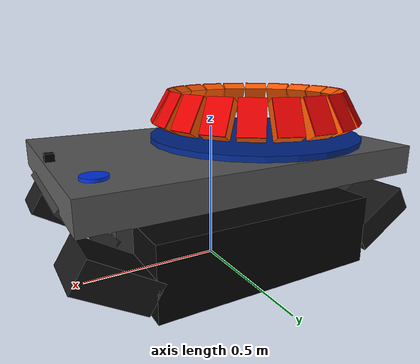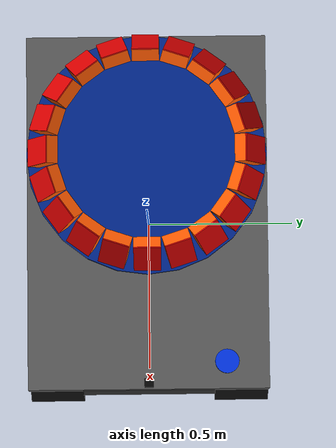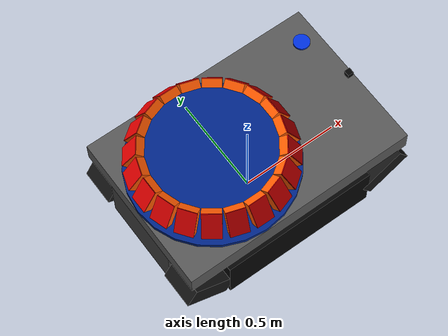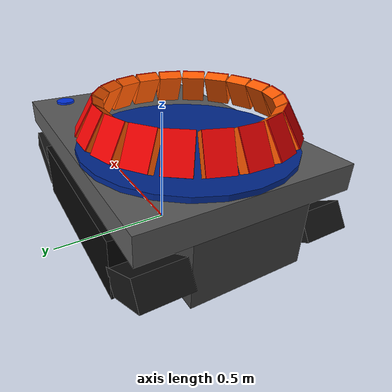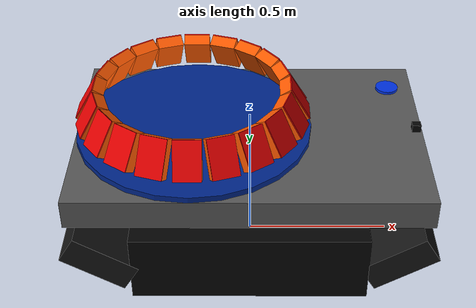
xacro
<?xml version="1.0"?>
<robot name="tracked_rover" xmlns:xacro="http://www.ros.org/wiki/xacro">

  <!-- Paramètres radar          -->

  <!-- Centre de la plateforme circulaire dans base_link -->
  <xacro:property name="platform_center_x" value="-0.19"/>
  <xacro:property name="platform_center_y" value="0.0"/>

  <!-- Plateforme : centre z = 0.45, épaisseur 0.02, donc dessus à z = 0.46 -->
  <xacro:property name="platform_top_z" value="0.46"/>

  <!-- Cercle des radars : diamètre 68 cm -->
  <xacro:property name="radar_ring_radius" value="0.34"/>

  <!-- Centre radar : 10 cm au-dessus du dessus de la plateforme -->
  <xacro:property name="radar_center_z" value="0.56"/>

  <!-- Dimensions radar : profondeur x, largeur y, hauteur z -->
  <xacro:property name="radar_depth" value="0.04"/>
  <xacro:property name="radar_width" value="0.09"/>
  <xacro:property name="radar_height" value="0.13"/>

  <!-- Inclinaison des radars : 30 degrés vers l'arrière / vers le haut -->
  <xacro:property name="radar_pitch" value="-0.523599"/>

  <!-- Macro module radar        -->

  <xacro:macro name="radar_module" params="name angle">

    <link name="${name}">

      <!-- Corps du radar -->
      <!-- x = profondeur 4 cm, y = largeur 9 cm, z = hauteur 13 cm -->
      <visual>
        <origin xyz="0 0 0" rpy="0 0 0"/>
        <geometry>
          <box size="${radar_depth} ${radar_width} ${radar_height}"/>
        </geometry>
        <material name="radar_orange">
          <color rgba="1.0 0.35 0.0 1.0"/>
        </material>
      </visual>

      <collision>
        <origin xyz="0 0 0" rpy="0 0 0"/>
        <geometry>
          <box size="${radar_depth} ${radar_width} ${radar_height}"/>
        </geometry>
      </collision>

      <!-- Face rouge côté +X pour visualiser le sens de détection -->
      <visual>
        <origin xyz="0.022 0 0" rpy="0 0 0"/>
        <geometry>
          <box size="0.004 ${radar_width} ${radar_height}"/>
        </geometry>
        <material name="radar_front_red">
          <color rgba="0.9 0.0 0.0 1.0"/>
        </material>
      </visual>

    </link>

    <joint name="base_to_${name}" type="fixed">
      <parent link="base_link"/>
      <child link="${name}"/>
      <origin
        xyz="${platform_center_x + radar_ring_radius * cos(angle)} ${platform_center_y + radar_ring_radius * sin(angle)} ${radar_center_z}"
        rpy="0 ${radar_pitch} ${angle}"/>
    </joint>

  </xacro:macro>

  <!-- Repère principal du rover -->
  <link name="base_link">

    <!-- Corps supérieur du rover : 1.18 m x 0.80 m x 0.10 m -->
    <!-- Le toit reste à z = 0.44 -->
    <visual>
      <origin xyz="0 0 0.39" rpy="0 0 0"/>
      <geometry>
        <box size="1.18 0.80 0.10"/>
      </geometry>
      <material name="rover_body_gray">
        <color rgba="0.35 0.35 0.35 1.0"/>
      </material>
    </visual>

    <collision>
      <origin xyz="0 0 0.39" rpy="0 0 0"/>
      <geometry>
        <box size="1.18 0.80 0.10"/>
      </geometry>
    </collision>

    <!-- Chenille gauche : partie centrale -->
    <visual>
      <origin xyz="0 0.31 0.16" rpy="0 0 0"/>
      <geometry>
        <box size="0.78 0.18 0.24"/>
      </geometry>
      <material name="track_black">
        <color rgba="0.02 0.02 0.02 1.0"/>
      </material>
    </visual>

    <collision>
      <origin xyz="0 0.31 0.16" rpy="0 0 0"/>
      <geometry>
        <box size="0.78 0.18 0.24"/>
      </geometry>
    </collision>

    <!-- Chenille gauche : chanfrein avant -->
    <visual>
      <origin xyz="0.49 0.31 0.18" rpy="0 -0.55 0"/>
      <geometry>
        <box size="0.24 0.18 0.10"/>
      </geometry>
      <material name="track_chamfer_dark">
        <color rgba="0.08 0.08 0.08 1.0"/>
      </material>
    </visual>

    <collision>
      <origin xyz="0.49 0.31 0.18" rpy="0 -0.55 0"/>
      <geometry>
        <box size="0.24 0.18 0.10"/>
      </geometry>
    </collision>

    <!-- Chenille gauche : chanfrein arrière -->
    <visual>
      <origin xyz="-0.49 0.31 0.18" rpy="0 0.55 0"/>
      <geometry>
        <box size="0.24 0.18 0.10"/>
      </geometry>
      <material name="track_chamfer_dark">
        <color rgba="0.08 0.08 0.08 1.0"/>
      </material>
    </visual>

    <collision>
      <origin xyz="-0.49 0.31 0.18" rpy="0 0.55 0"/>
      <geometry>
        <box size="0.24 0.18 0.10"/>
      </geometry>
    </collision>

    <!-- Chenille droite : partie centrale -->
    <visual>
      <origin xyz="0 -0.31 0.16" rpy="0 0 0"/>
      <geometry>
        <box size="0.78 0.18 0.24"/>
      </geometry>
      <material name="track_black">
        <color rgba="0.02 0.02 0.02 1.0"/>
      </material>
    </visual>

    <collision>
      <origin xyz="0 -0.31 0.16" rpy="0 0 0"/>
      <geometry>
        <box size="0.78 0.18 0.24"/>
      </geometry>
    </collision>

    <!-- Chenille droite : chanfrein avant -->
    <visual>
      <origin xyz="0.49 -0.31 0.18" rpy="0 -0.55 0"/>
      <geometry>
        <box size="0.24 0.18 0.10"/>
      </geometry>
      <material name="track_chamfer_dark">
        <color rgba="0.08 0.08 0.08 1.0"/>
      </material>
    </visual>

    <collision>
      <origin xyz="0.49 -0.31 0.18" rpy="0 -0.55 0"/>
      <geometry>
        <box size="0.24 0.18 0.10"/>
      </geometry>
    </collision>

    <!-- Chenille droite : chanfrein arrière -->
    <visual>
      <origin xyz="-0.49 -0.31 0.18" rpy="0 0.55 0"/>
      <geometry>
        <box size="0.24 0.18 0.10"/>
      </geometry>
      <material name="track_chamfer_dark">
        <color rgba="0.08 0.08 0.08 1.0"/>
      </material>
    </visual>

    <collision>
      <origin xyz="-0.49 -0.31 0.18" rpy="0 0.55 0"/>
      <geometry>
        <box size="0.24 0.18 0.10"/>
      </geometry>
    </collision>

    <!-- Partie centrale basse entre les chenilles -->
    <visual>
      <origin xyz="-0.075 0 0.22" rpy="0 0 0"/>
      <geometry>
        <box size="1.03 0.44 0.24"/>
      </geometry>
      <material name="center_body_gray">
        <color rgba="0.25 0.25 0.25 1.0"/>
      </material>
    </visual>

    <collision>
      <origin xyz="-0.075 0 0.22" rpy="0 0 0"/>
      <geometry>
        <box size="1.03 0.44 0.24"/>
      </geometry>
    </collision>

    <!-- Approximation du chanfrein avant central du corps -->
    <visual>
      <origin xyz="0.515 0 0.285" rpy="0 -0.785398 0"/>
      <geometry>
        <box size="0.21 0.44 0.04"/>
      </geometry>
      <material name="front_chamfer_gray">
        <color rgba="0.22 0.22 0.22 1.0"/>
      </material>
    </visual>

    <collision>
      <origin xyz="0.515 0 0.285" rpy="0 -0.785398 0"/>
      <geometry>
        <box size="0.21 0.44 0.04"/>
      </geometry>
    </collision>

    <!-- Plateforme circulaire arrière : diamètre 80 cm, épaisseur 2 cm -->
    <!-- Bord arrière aligné avec l'arrière du rover -->
    <visual>
      <origin xyz="-0.19 0 0.45" rpy="0 0 0"/>
      <geometry>
        <cylinder radius="0.40" length="0.02"/>
      </geometry>
      <material name="rear_platform_blue">
        <color rgba="0.0 0.15 0.55 1.0"/>
      </material>
    </visual>

    <collision>
      <origin xyz="-0.19 0 0.45" rpy="0 0 0"/>
      <geometry>
        <cylinder radius="0.40" length="0.02"/>
      </geometry>
    </collision>

  </link>

  <!-- 20 modules radar ARS5     -->

  <!-- Avant du rover -->
  <xacro:radar_module name="radar_117_link" angle="0.000000"/>

  <!-- Côté gauche du rover : IDs décroissants -->
  <xacro:radar_module name="radar_116_link" angle="0.314159"/>
  <xacro:radar_module name="radar_115_link" angle="0.628319"/>
  <xacro:radar_module name="radar_114_link" angle="0.942478"/>
  <xacro:radar_module name="radar_113_link" angle="1.256637"/>
  <xacro:radar_module name="radar_112_link" angle="1.570796"/>
  <xacro:radar_module name="radar_111_link" angle="1.884956"/>
  <xacro:radar_module name="radar_110_link" angle="2.199115"/>

  <!-- Arrière gauche / arrière -->
  <xacro:radar_module name="radar_129_link" angle="2.513274"/>
  <xacro:radar_module name="radar_128_link" angle="2.827433"/>
  <xacro:radar_module name="radar_127_link" angle="3.141593"/>

  <!-- Arrière droit / côté droit : IDs décroissants jusqu'à 118 -->
  <xacro:radar_module name="radar_126_link" angle="3.455752"/>
  <xacro:radar_module name="radar_125_link" angle="3.769911"/>
  <xacro:radar_module name="radar_124_link" angle="4.084070"/>
  <xacro:radar_module name="radar_123_link" angle="4.398230"/>
  <xacro:radar_module name="radar_122_link" angle="4.712389"/>
  <xacro:radar_module name="radar_121_link" angle="5.026548"/>
  <xacro:radar_module name="radar_120_link" angle="5.340708"/>
  <xacro:radar_module name="radar_119_link" angle="5.654867"/>
  <xacro:radar_module name="radar_118_link" angle="5.969026"/>

  <!-- Lidar AS-DT1 -->
  <link name="as_dt1_link">

    <!-- Volume visible du lidar : cube 3 cm x 3 cm x 3 cm -->
    <visual>
      <origin xyz="0 0 0" rpy="0 0 0"/>
      <geometry>
        <box size="0.03 0.03 0.03"/>
      </geometry>
      <material name="lidar_black">
        <color rgba="0.02 0.02 0.02 1.0"/>
      </material>
    </visual>

    <collision>
      <origin xyz="0 0 0" rpy="0 0 0"/>
      <geometry>
        <box size="0.03 0.03 0.03"/>
      </geometry>
    </collision>

  </link>

  <joint name="base_to_as_dt1" type="fixed">
    <parent link="base_link"/>
    <child link="as_dt1_link"/>
    <origin xyz="0.57 0.00 0.45" rpy="0 1.57079632679 0"/>
  </joint>

  <!-- IMU -->
  <link name="imu_link"/>

  <joint name="base_to_imu" type="fixed">
    <parent link="base_link"/>
    <child link="imu_link"/>
    <!-- x avant, y gauche, z haut -->
    <origin xyz="0.16 0.06 0.33" rpy="0 0 0"/>
  </joint>

  <!-- GPS -->
  <link name="gps_link">

    <!-- Volume visible du GPS : disque diamètre 8 cm, hauteur 2 cm -->
    <visual>
      <origin xyz="0 0 0" rpy="0 0 0"/>
      <geometry>
        <cylinder radius="0.04" length="0.02"/>
      </geometry>
      <material name="gps_blue">
        <color rgba="0.0 0.2 0.9 1.0"/>
      </material>
    </visual>

    <collision>
      <origin xyz="0 0 0" rpy="0 0 0"/>
      <geometry>
        <cylinder radius="0.04" length="0.02"/>
      </geometry>
    </collision>

  </link>

  <joint name="base_to_gps" type="fixed">
    <parent link="base_link"/>
    <child link="gps_link"/>
    <!-- x avant, y gauche, z haut -->
    <origin xyz="0.50 0.26 0.44" rpy="0 0 0"/>
  </joint>

</robot>
